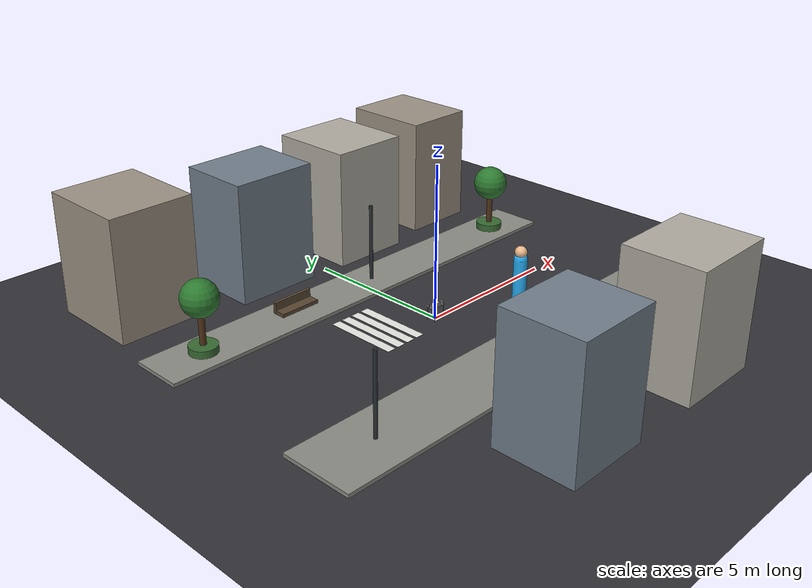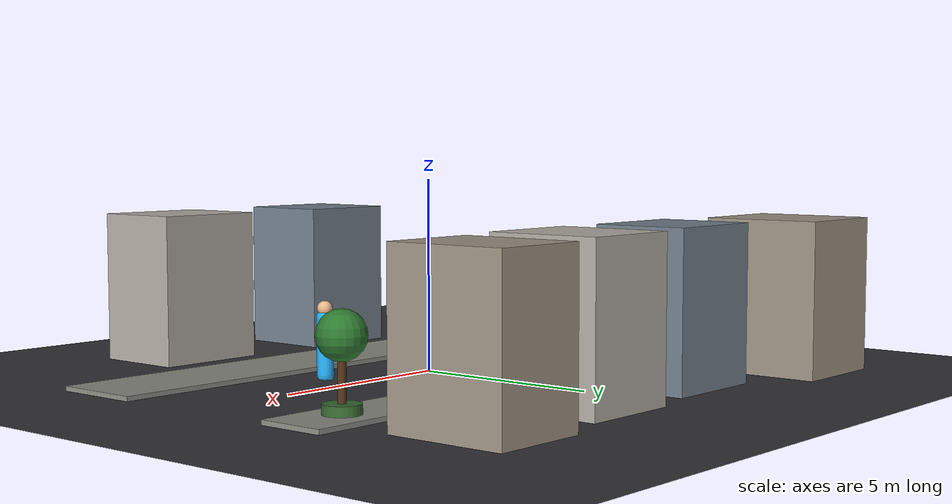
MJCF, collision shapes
<mujoco model="parcel_val_unseen_91012">
  <!-- GENERATED by evals/nav_instruct/scene_gen.py, seed 91012. Do not hand-edit. -->
  <include file="../../../third_party/unitree_mujoco/unitree_robots/go2/go2.xml"/>
  <compiler meshdir="../../../third_party/unitree_mujoco/unitree_robots/go2/assets"
    angle="radian" autolimits="true"/>
  <statistic center="0 0 0.4" extent="8"/>
  <visual>
    <headlight diffuse="0.6 0.6 0.6" ambient="0.35 0.35 0.35" specular="0 0 0"/>
    <rgba haze="0.45 0.5 0.55 1"/>
    <global azimuth="-140" elevation="-18"/>
  </visual>
  <asset>
    <texture type="skybox" builtin="gradient" rgb1="0.45 0.62 0.82"
      rgb2="0.08 0.12 0.18" width="512" height="3072"/>
    <texture type="2d" name="asphalt" builtin="checker" mark="edge"
      rgb1="0.22 0.22 0.24" rgb2="0.18 0.18 0.2" markrgb="0.3 0.3 0.32"
      width="256" height="256"/>
    <texture type="2d" name="sidewalk" builtin="flat" rgb1="0.55 0.55 0.52"
      width="128" height="128"/>
    <material name="asphalt" texture="asphalt" texuniform="true"
      texrepeat="8 8" reflectance="0.05"/>
    <material name="sidewalk" texture="sidewalk" reflectance="0.08"/>
    <material name="building_a" rgba="0.62 0.58 0.52 1"/>
    <material name="building_b" rgba="0.45 0.5 0.55 1"/>
    <material name="building_c" rgba="0.7 0.68 0.64 1"/>
    <material name="crosswalk" rgba="0.92 0.92 0.9 1"/>
    <material name="bench" rgba="0.35 0.28 0.2 1"/>
    <material name="city_grass" rgba="0.22 0.42 0.2 1"/>
    <material name="city_metal" rgba="0.16 0.18 0.2 1"/>
  </asset>
  <worldbody>
    <light pos="2 1 6" dir="-0.2 -0.1 -1" diffuse="0.8 0.8 0.75" castshadow="true"/>
    <light pos="-3 -2 5" dir="0.3 0.2 -1" diffuse="0.35 0.35 0.4"/>
    <geom name="road" type="plane" size="12 12 0.05" material="asphalt" friction="0.9"/>
    <geom name="sidewalk" type="box" pos="0.0 3.242 0.06" size="8 0.873 0.06" material="sidewalk"/>
    <geom name="sidewalk_south" type="box" pos="0.0 -3.404 0.06" size="8 1.18 0.06" material="sidewalk"/>
    <geom name="xw1" type="box" pos="-2.341 0.759 0.002" size="0.15 1.196 0.002" material="crosswalk"/>
    <geom name="xw2" type="box" pos="-1.941 0.759 0.002" size="0.15 1.196 0.002" material="crosswalk"/>
    <geom name="xw3" type="box" pos="-1.541 0.759 0.002" size="0.15 1.196 0.002" material="crosswalk"/>
    <geom name="xw4" type="box" pos="-1.141 0.759 0.002" size="0.15 1.196 0.002" material="crosswalk"/>
    <geom name="bldg_1" type="box" pos="-6.278 6.935 2.0" size="1.403 1.557 2.0" material="building_a"/>
    <geom name="bldg_2" type="box" pos="-2.088 6.126 2.0" size="1.453 1.242 2.0" material="building_b"/>
    <geom name="bldg_3" type="box" pos="1.935 6.244 2.0" size="1.365 1.469 2.0" material="building_c"/>
    <geom name="bldg_4" type="box" pos="5.789 6.67 2.0" size="1.248 1.523 2.0" material="building_a"/>
    <geom name="bldg_5" type="box" pos="-2.693 -6.905 2.0" size="1.399 1.278 2.0" material="building_b"/>
    <geom name="bldg_6" type="box" pos="2.46 -6.978 2.0" size="1.503 1.269 2.0" material="building_c"/>
    <geom name="planter_1" type="cylinder" pos="-6.343 3.242 0.18" size="0.45 0.18" material="city_grass"/>
    <geom name="tree_1" type="cylinder" pos="-6.343 3.242 0.9" size="0.10 0.75" rgba="0.32 0.2 0.1 1"/>
    <geom name="tree_top_1" type="sphere" pos="-6.343 3.242 1.85" size="0.58" rgba="0.18 0.48 0.19 1"/>
    <geom name="planter_2" type="cylinder" pos="6.441 3.242 0.18" size="0.45 0.18" material="city_grass"/>
    <geom name="tree_2" type="cylinder" pos="6.441 3.242 0.9" size="0.10 0.75" rgba="0.32 0.2 0.1 1"/>
    <geom name="tree_top_2" type="sphere" pos="6.441 3.242 1.85" size="0.58" rgba="0.18 0.48 0.19 1"/>
    <geom name="lamp_post_1" type="cylinder" pos="0.437 3.242 1.35" size="0.06 1.35" material="city_metal"/>
    <geom name="lamp_post_2" type="cylinder" pos="-5.941 -3.404 1.35" size="0.06 1.35" material="city_metal"/>
    <geom name="bench_seat" type="box" pos="-2.823 3.242 0.28" size="0.7 0.22 0.06" material="bench"/>
    <geom name="bench_back" type="box" pos="-2.823 3.422 0.42" size="0.7 0.05 0.18" material="bench"/>
    <body name="owner" mocap="true" pos="2.595 -1.201 0">
      <geom name="owner_body" type="capsule" fromto="0 0 0.1 0 0 1.55"
        size="0.22" contype="0" conaffinity="0" rgba="0.15 0.68 0.95 1"/>
      <geom name="owner_head" type="sphere" pos="0 0 1.78" size="0.2"
        contype="0" conaffinity="0" rgba="0.92 0.72 0.55 1"/>
    </body>
  </worldbody>
</mujoco>

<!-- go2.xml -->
<mujoco model="go2">
  <compiler angle="radian" meshdir="assets" autolimits="true" />

  <option cone="elliptic" impratio="100" />

  <default>
    <default class="go2">
      <geom friction="0.4" margin="0.001" condim="1"/>
      <joint axis="0 1 0" damping="0.1" armature="0.01" frictionloss="0.2"/>
      <motor ctrlrange="-23.7 23.7"/>
      <default class="abduction">
        <joint axis="1 0 0" range="-1.0472 1.0472"/>
      </default>
      <default class="hip">
        <default class="front_hip">
          <joint range="-1.5708 3.4907"/>
        </default>
        <default class="back_hip">
          <joint range="-0.5236 4.5379"/>
        </default>
      </default>
      <default class="knee">
        <joint range="-2.7227 -0.83776"/>
        <motor ctrlrange="-45.43 45.43"/>
      </default>
      <default class="visual">
        <geom type="mesh" contype="0" conaffinity="0" group="2"/>
      </default>
      <default class="collision">
        <geom group="3"/>
        <default class="foot">
          <geom size="0.022" pos="-0.002 0 -0.213" priority="1" condim="6"
            friction="0.4 0.02 0.01"/>
        </default>
      </default>
    </default>
  </default>

  <asset>
    <material name="metal" rgba=".9 .95 .95 1" />
    <material name="black" rgba="0 0 0 1" />
    <material name="white" rgba="1 1 1 1" />
    <material name="gray" rgba="0.671705 0.692426 0.774270 1" />

    <mesh file="base_0.obj" />
    <mesh file="base_1.obj" />
    <mesh file="base_2.obj" />
    <mesh file="base_3.obj" />
    <mesh file="base_4.obj" />
    <mesh file="hip_0.obj" />
    <mesh file="hip_1.obj" />
    <mesh file="thigh_0.obj" />
    <mesh file="thigh_1.obj" />
    <mesh file="thigh_mirror_0.obj" />
    <mesh file="thigh_mirror_1.obj" />
    <mesh file="calf_0.obj" />
    <mesh file="calf_1.obj" />
    <mesh file="calf_mirror_0.obj" />
    <mesh file="calf_mirror_1.obj" />
    <mesh file="foot.obj" />
  </asset>

  <worldbody>
    <body name="base_link" pos="0 0 0.445" childclass="go2">
      <inertial pos="0.021112 0 -0.005366" quat="-0.000543471 0.713435 -0.00173769 0.700719"
        mass="6.921"
        diaginertia="0.107027 0.0980771 0.0244531" />
      <freejoint />
      <geom mesh="base_0" material="black" class="visual" />
      <geom mesh="base_1" material="black" class="visual" />
      <geom mesh="base_2" material="black" class="visual" />
      <geom mesh="base_3" material="white" class="visual" />
      <geom mesh="base_4" material="gray" class="visual" />
      <geom size="0.1881 0.04675 0.057" type="box" class="collision" />
      <geom size="0.05 0.045" pos="0.285 0 0.01" type="cylinder" class="collision" />
      <geom size="0.047" pos="0.293 0 -0.06" class="collision" />
      <site name="imu" pos="-0.02557 0 0.04232" />
      <camera
        name="Gurukul_depth"
        pos="0.33 0 0.08"
        xyaxes="0 -1 0 0.3420201433 0 0.9396926208"
        resolution="106 60"
        focal="0.11041 0.11041"
        sensorsize="0.20955 0.12240"
        principalpixel="0 0"
      />
      <body name="FL_hip" pos="0.1934 0.0465 0">
        <inertial pos="-0.0054 0.00194 -0.000105" quat="0.497014 0.499245 0.505462 0.498237"
          mass="0.678"
          diaginertia="0.00088403 0.000596003 0.000479967" />
        <joint name="FL_hip_joint" class="abduction" />
        <geom mesh="hip_0" material="metal" class="visual" />
        <geom mesh="hip_1" material="gray" class="visual" />
        <geom size="0.046 0.02" pos="0 0.08 0" quat="1 1 0 0" type="cylinder" class="collision" />
        <body name="FL_thigh" pos="0 0.0955 0">
          <inertial pos="-0.00374 -0.0223 -0.0327" quat="0.829533 0.0847635 -0.0200632 0.551623"
            mass="1.152"
            diaginertia="0.00594973 0.00584149 0.000878787" />
          <joint name="FL_thigh_joint" class="front_hip" />
          <geom mesh="thigh_0" material="metal" class="visual" />
          <geom mesh="thigh_1" material="gray" class="visual" />
          <geom size="0.1065 0.01225 0.017" pos="0 0 -0.1065" quat="0.707107 0 0.707107 0"
            type="box" class="collision" />
          <body name="FL_calf" pos="0 0 -0.213">
            <inertial pos="0.00629595 -0.000622121 -0.141417"
              quat="0.710672 0.00154099 -0.00450087 0.703508"
              mass="0.241352" diaginertia="0.0014901 0.00146356 5.31397e-05" />
            <joint name="FL_calf_joint" class="knee" />
            <geom mesh="calf_0" material="gray" class="visual" />
            <geom mesh="calf_1" material="black" class="visual" />
            <geom size="0.012 0.06" pos="0.008 0 -0.06" quat="0.994493 0 -0.104807 0"
              type="cylinder" class="collision" />
            <geom size="0.011 0.0325" pos="0.02 0 -0.148" quat="0.999688 0 0.0249974 0"
              type="cylinder" class="collision" />
            <geom pos="0 0 -0.213" mesh="foot" class="visual" material="black" />
            <geom name="FL" class="foot" />
            <body name="FL_foot" pos="0 0 -0.213" />
          </body>
        </body>
      </body>
      <body name="FR_hip" pos="0.1934 -0.0465 0">
        <inertial pos="-0.0054 -0.00194 -0.000105" quat="0.498237 0.505462 0.499245 0.497014"
          mass="0.678"
          diaginertia="0.00088403 0.000596003 0.000479967" />
        <joint name="FR_hip_joint" class="abduction" />
        <geom mesh="hip_0" material="metal" class="visual" quat="4.63268e-05 1 0 0" />
        <geom mesh="hip_1" material="gray" class="visual" quat="4.63268e-05 1 0 0" />
        <geom size="0.046 0.02" pos="0 -0.08 0" quat="0.707107 0.707107 0 0" type="cylinder"
          class="collision" />
        <body name="FR_thigh" pos="0 -0.0955 0">
          <inertial pos="-0.00374 0.0223 -0.0327" quat="0.551623 -0.0200632 0.0847635 0.829533"
            mass="1.152"
            diaginertia="0.00594973 0.00584149 0.000878787" />
          <joint name="FR_thigh_joint" class="front_hip" />
          <geom mesh="thigh_mirror_0" material="metal" class="visual" />
          <geom mesh="thigh_mirror_1" material="gray" class="visual" />
          <geom size="0.1065 0.01225 0.017" pos="0 0 -0.1065" quat="0.707107 0 0.707107 0"
            type="box" class="collision" />
          <body name="FR_calf" pos="0 0 -0.213">
            <inertial pos="0.00629595 0.000622121 -0.141417"
              quat="0.703508 -0.00450087 0.00154099 0.710672"
              mass="0.241352" diaginertia="0.0014901 0.00146356 5.31397e-05" />
            <joint name="FR_calf_joint" class="knee" />
            <geom mesh="calf_mirror_0" material="gray" class="visual" />
            <geom mesh="calf_mirror_1" material="black" class="visual" />
            <geom size="0.013 0.06" pos="0.01 0 -0.06" quat="0.995004 0 -0.0998334 0"
              type="cylinder" class="collision" />
            <geom size="0.011 0.0325" pos="0.02 0 -0.148" quat="0.999688 0 0.0249974 0"
              type="cylinder" class="collision" />
            <geom pos="0 0 -0.213" mesh="foot" class="visual" material="black" />
            <geom name="FR" class="foot" />
            <body name="FR_foot" pos="0 0 -0.213" />
          </body>
        </body>
      </body>
      <body name="RL_hip" pos="-0.1934 0.0465 0">
        <inertial pos="0.0054 0.00194 -0.000105" quat="0.505462 0.498237 0.497014 0.499245"
          mass="0.678"
          diaginertia="0.00088403 0.000596003 0.000479967" />
        <joint name="RL_hip_joint" class="abduction" />
        <geom mesh="hip_0" material="metal" class="visual" quat="4.63268e-05 0 1 0" />
        <geom mesh="hip_1" material="gray" class="visual" quat="4.63268e-05 0 1 0" />
        <geom size="0.046 0.02" pos="0 0.08 0" quat="0.707107 0.707107 0 0" type="cylinder"
          class="collision" />
        <body name="RL_thigh" pos="0 0.0955 0">
          <inertial pos="-0.00374 -0.0223 -0.0327" quat="0.829533 0.0847635 -0.0200632 0.551623"
            mass="1.152"
            diaginertia="0.00594973 0.00584149 0.000878787" />
          <joint name="RL_thigh_joint" class="back_hip" />
          <geom mesh="thigh_0" material="metal" class="visual" />
          <geom mesh="thigh_1" material="gray" class="visual" />
          <geom size="0.1065 0.01225 0.017" pos="0 0 -0.1065" quat="0.707107 0 0.707107 0"
            type="box" class="collision" />
          <body name="RL_calf" pos="0 0 -0.213">
            <inertial pos="0.00629595 -0.000622121 -0.141417"
              quat="0.710672 0.00154099 -0.00450087 0.703508"
              mass="0.241352" diaginertia="0.0014901 0.00146356 5.31397e-05" />
            <joint name="RL_calf_joint" class="knee" />
            <geom mesh="calf_0" material="gray" class="visual" />
            <geom mesh="calf_1" material="black" class="visual" />
            <geom size="0.013 0.06" pos="0.01 0 -0.06" quat="0.995004 0 -0.0998334 0"
              type="cylinder" class="collision" />
            <geom size="0.011 0.0325" pos="0.02 0 -0.148" quat="0.999688 0 0.0249974 0"
              type="cylinder" class="collision" />
            <geom pos="0 0 -0.213" mesh="foot" class="visual" material="black" />
            <geom name="RL" class="foot" />
            <body name="RL_foot" pos="0 0 -0.213" />
          </body>
        </body>
      </body>
      <body name="RR_hip" pos="-0.1934 -0.0465 0">
        <inertial pos="0.0054 -0.00194 -0.000105" quat="0.499245 0.497014 0.498237 0.505462"
          mass="0.678"
          diaginertia="0.00088403 0.000596003 0.000479967" />
        <joint name="RR_hip_joint" class="abduction" />
        <geom mesh="hip_0" material="metal" class="visual"
          quat="2.14617e-09 4.63268e-05 4.63268e-05 -1" />
        <geom mesh="hip_1" material="gray" class="visual"
          quat="2.14617e-09 4.63268e-05 4.63268e-05 -1" />
        <geom size="0.046 0.02" pos="0 -0.08 0" quat="0.707107 0.707107 0 0" type="cylinder"
          class="collision" />
        <body name="RR_thigh" pos="0 -0.0955 0">
          <inertial pos="-0.00374 0.0223 -0.0327" quat="0.551623 -0.0200632 0.0847635 0.829533"
            mass="1.152"
            diaginertia="0.00594973 0.00584149 0.000878787" />
          <joint name="RR_thigh_joint" class="back_hip" />
          <geom mesh="thigh_mirror_0" material="metal" class="visual" />
          <geom mesh="thigh_mirror_1" material="gray" class="visual" />
          <geom size="0.1065 0.01225 0.017" pos="0 0 -0.1065" quat="0.707107 0 0.707107 0"
            type="box" class="collision" />
          <body name="RR_calf" pos="0 0 -0.213">
            <inertial pos="0.00629595 0.000622121 -0.141417"
              quat="0.703508 -0.00450087 0.00154099 0.710672"
              mass="0.241352" diaginertia="0.0014901 0.00146356 5.31397e-05" />
            <joint name="RR_calf_joint" class="knee" />
            <geom mesh="calf_mirror_0" material="gray" class="visual" />
            <geom mesh="calf_mirror_1" material="black" class="visual" />
            <geom size="0.013 0.06" pos="0.01 0 -0.06" quat="0.995004 0 -0.0998334 0"
              type="cylinder" class="collision" />
            <geom size="0.011 0.0325" pos="0.02 0 -0.148" quat="0.999688 0 0.0249974 0"
              type="cylinder" class="collision" />
            <geom pos="0 0 -0.213" mesh="foot" class="visual" material="black" />
            <geom name="RR" class="foot" />
            <body name="RR_foot" pos="0 0 -0.213" />
          </body>
        </body>
      </body>
    </body>
  </worldbody>

  <actuator>
    <motor class="abduction" name="FR_hip" joint="FR_hip_joint" />
    <motor class="hip" name="FR_thigh" joint="FR_thigh_joint" />
    <motor class="knee" name="FR_calf" joint="FR_calf_joint" />
    <motor class="abduction" name="FL_hip" joint="FL_hip_joint" />
    <motor class="hip" name="FL_thigh" joint="FL_thigh_joint" />
    <motor class="knee" name="FL_calf" joint="FL_calf_joint" />
    <motor class="abduction" name="RR_hip" joint="RR_hip_joint" />
    <motor class="hip" name="RR_thigh" joint="RR_thigh_joint" />
    <motor class="knee" name="RR_calf" joint="RR_calf_joint" />
    <motor class="abduction" name="RL_hip" joint="RL_hip_joint" />
    <motor class="hip" name="RL_thigh" joint="RL_thigh_joint" />
    <motor class="knee" name="RL_calf" joint="RL_calf_joint" />
  </actuator>

  <sensor>
    <jointpos name="FR_hip_pos" joint="FR_hip_joint" />
    <jointpos name="FR_thigh_pos" joint="FR_thigh_joint" />
    <jointpos name="FR_calf_pos" joint="FR_calf_joint" />
    <jointpos name="FL_hip_pos" joint="FL_hip_joint" />
    <jointpos name="FL_thigh_pos" joint="FL_thigh_joint" />
    <jointpos name="FL_calf_pos" joint="FL_calf_joint" />
    <jointpos name="RR_hip_pos" joint="RR_hip_joint" />
    <jointpos name="RR_thigh_pos" joint="RR_thigh_joint" />
    <jointpos name="RR_calf_pos" joint="RR_calf_joint" />
    <jointpos name="RL_hip_pos" joint="RL_hip_joint" />
    <jointpos name="RL_thigh_pos" joint="RL_thigh_joint" />
    <jointpos name="RL_calf_pos" joint="RL_calf_joint" />

    <jointvel name="FR_hip_vel" joint="FR_hip_joint" />
    <jointvel name="FR_thigh_vel" joint="FR_thigh_joint" />
    <jointvel name="FR_calf_vel" joint="FR_calf_joint" />
    <jointvel name="FL_hip_vel" joint="FL_hip_joint" />
    <jointvel name="FL_thigh_vel" joint="FL_thigh_joint" />
    <jointvel name="FL_calf_vel" joint="FL_calf_joint" />
    <jointvel name="RR_hip_vel" joint="RR_hip_joint" />
    <jointvel name="RR_thigh_vel" joint="RR_thigh_joint" />
    <jointvel name="RR_calf_vel" joint="RR_calf_joint" />
    <jointvel name="RL_hip_vel" joint="RL_hip_joint" />
    <jointvel name="RL_thigh_vel" joint="RL_thigh_joint" />
    <jointvel name="RL_calf_vel" joint="RL_calf_joint" />

    <jointactuatorfrc name="FR_hip_torque" joint="FR_hip_joint" noise="0.01" />
    <jointactuatorfrc name="FR_thigh_torque" joint="FR_thigh_joint" noise="0.01" />
    <jointactuatorfrc name="FR_calf_torque" joint="FR_calf_joint" noise="0.01" />
    <jointactuatorfrc name="FL_hip_torque" joint="FL_hip_joint" noise="0.01" />
    <jointactuatorfrc name="FL_thigh_torque" joint="FL_thigh_joint" noise="0.01" />
    <jointactuatorfrc name="FL_calf_torque" joint="FL_calf_joint" noise="0.01" />
    <jointactuatorfrc name="RR_hip_torque" joint="RR_hip_joint" noise="0.01" />
    <jointactuatorfrc name="RR_thigh_torque" joint="RR_thigh_joint" noise="0.01" />
    <jointactuatorfrc name="RR_calf_torque" joint="RR_calf_joint" noise="0.01" />
    <jointactuatorfrc name="RL_hip_torque" joint="RL_hip_joint" noise="0.01" />
    <jointactuatorfrc name="RL_thigh_torque" joint="RL_thigh_joint" noise="0.01" />
    <jointactuatorfrc name="RL_calf_torque" joint="RL_calf_joint" noise="0.01" />

    <framequat name="imu_quat" objtype="site" objname="imu" />
    <gyro name="imu_gyro" site="imu" />
    <accelerometer name="imu_acc" site="imu" />

    <framepos name="frame_pos" objtype="site" objname="imu" />
    <framelinvel name="frame_vel" objtype="site" objname="imu" />
  </sensor>

  <keyframe>
    <key name="home" qpos="0 0 0.27 1 0 0 0 0 0.9 -1.8 0 0.9 -1.8 0 0.9 -1.8 0 0.9 -1.8"
      ctrl="0 0.9 -1.8 0 0.9 -1.8 0 0.9 -1.8 0 0.9 -1.8" />
  </keyframe>
</mujoco>
